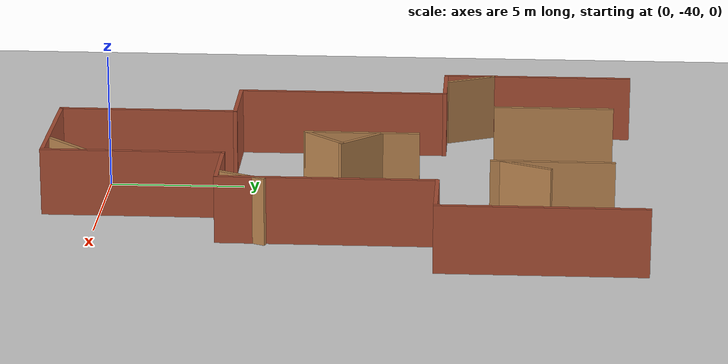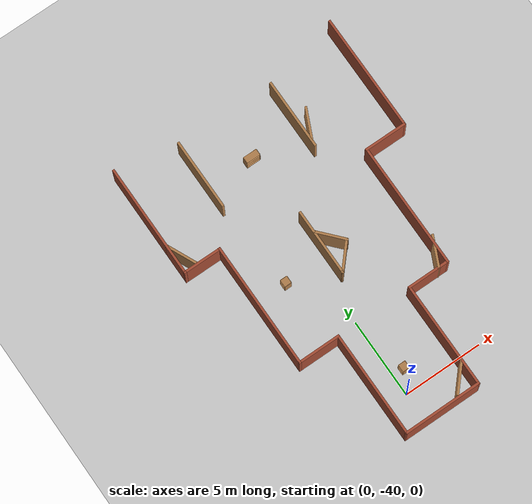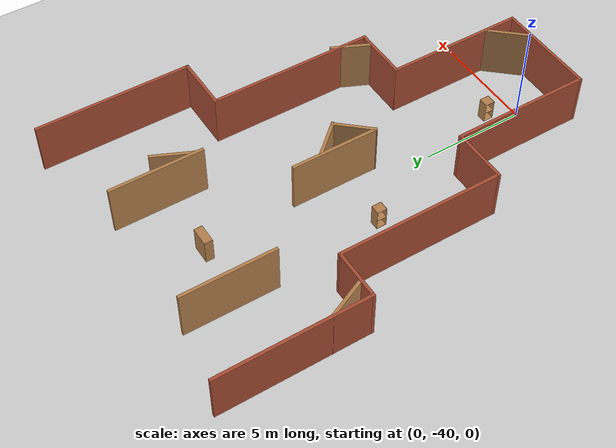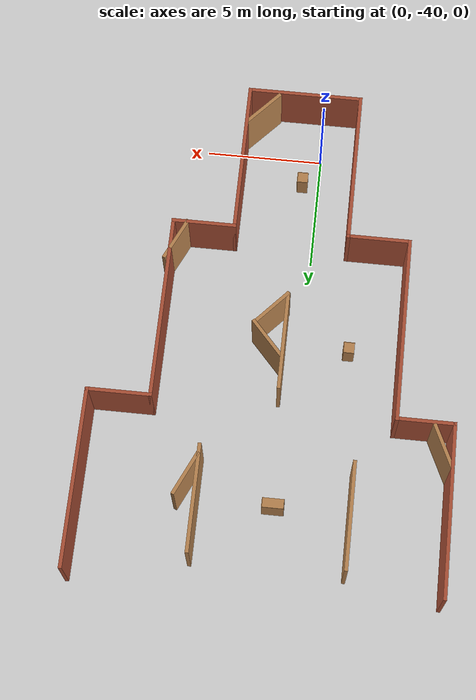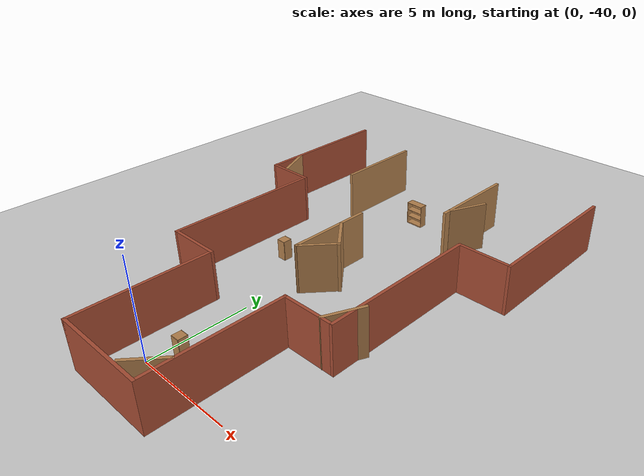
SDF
<sdf version="1.6">
 <world name="default">
  <model name="ground_plane">
   <static>1</static>
   <link name="link">
    <collision name="collision">
     <geometry><plane><normal>0 0 1</normal><size>100 100</size></plane></geometry>
     <surface><friction><ode><mu>100</mu><mu2>50</mu2></ode></friction></surface>
    </collision>
    <visual name="visual">
     <cast_shadows>0</cast_shadows>
     <geometry><plane><normal>0 0 1</normal><size>100 100</size></plane></geometry>
     <material>
      <script><uri>file://media/materials/scripts/gazebo.material</uri><name>Gazebo/Grey</name></script>
     </material>
    </visual>
   </link>
  </model>
  <model name="bookshelf_0">
   <static>1</static>
   <link name="link">
    <inertial><mass>1</mass></inertial>
    <collision name="back">
     <pose>0 0.005 0.6 0 -0 0</pose>
     <geometry><box><size>0.9 0.01 1.2</size></box></geometry>
    </collision>
    <visual name="visual1">
     <pose>0 0.005 0.6 0 -0 0</pose>
     <geometry><box><size>0.9 0.01 1.2</size></box></geometry>
     <material>
      <script><uri>file://media/materials/scripts/gazebo.material</uri><name>Gazebo/Wood</name></script>
     </material>
    </visual>
    <collision name="left_side">
     <pose>0.45 -0.195 0.6 0 -0 0</pose>
     <geometry><box><size>0.02 0.4 1.2</size></box></geometry>
    </collision>
    <visual name="visual2">
     <pose>0.45 -0.195 0.6 0 -0 0</pose>
     <geometry><box><size>0.02 0.4 1.2</size></box></geometry>
     <material>
      <script><uri>file://media/materials/scripts/gazebo.material</uri><name>Gazebo/Wood</name></script>
     </material>
    </visual>
    <collision name="right_side">
     <pose>-0.45 -0.195 0.6 0 -0 0</pose>
     <geometry><box><size>0.02 0.4 1.2</size></box></geometry>
    </collision>
    <visual name="visual3">
     <pose>-0.45 -0.195 0.6 0 -0 0</pose>
     <geometry><box><size>0.02 0.4 1.2</size></box></geometry>
     <material>
      <script><uri>file://media/materials/scripts/gazebo.material</uri><name>Gazebo/Wood</name></script>
     </material>
    </visual>
    <collision name="bottom">
     <pose>0 -0.195 0.03 0 -0 0</pose>
     <geometry><box><size>0.88 0.4 0.06</size></box></geometry>
    </collision>
    <visual name="visual4">
     <pose>0 -0.195 0.03 0 -0 0</pose>
     <geometry><box><size>0.88 0.4 0.06</size></box></geometry>
     <material>
      <script><uri>file://media/materials/scripts/gazebo.material</uri><name>Gazebo/Wood</name></script>
     </material>
    </visual>
    <collision name="top">
     <pose>0 -0.195 1.19 0 -0 0</pose>
     <geometry><box><size>0.88 0.4 0.02</size></box></geometry>
    </collision>
    <visual name="visual5">
     <pose>0 -0.195 1.19 0 -0 0</pose>
     <geometry><box><size>0.88 0.4 0.02</size></box></geometry>
     <material>
      <script><uri>file://media/materials/scripts/gazebo.material</uri><name>Gazebo/Wood</name></script>
     </material>
    </visual>
    <collision name="low_shelf">
     <pose>0 -0.195 0.43 0 -0 0</pose>
     <geometry><box><size>0.88 0.4 0.02</size></box></geometry>
    </collision>
    <visual name="visual6">
     <pose>0 -0.195 0.43 0 -0 0</pose>
     <geometry><box><size>0.88 0.4 0.02</size></box></geometry>
     <material>
      <script><uri>file://media/materials/scripts/gazebo.material</uri><name>Gazebo/Wood</name></script>
     </material>
    </visual>
    <collision name="high_shelf">
     <pose>0 -0.195 0.8 0 -0 0</pose>
     <geometry><box><size>0.88 0.4 0.02</size></box></geometry>
    </collision>
    <visual name="visual7">
     <pose>0 -0.195 0.8 0 -0 0</pose>
     <geometry><box><size>0.88 0.4 0.02</size></box></geometry>
     <material>
      <script><uri>file://media/materials/scripts/gazebo.material</uri><name>Gazebo/Wood</name></script>
     </material>
    </visual>
   </link>
   <pose>0.557156 -23.734 0 0 -0 0</pose>
  </model>
  <model name="cabinet_6">
   <static>1</static>
   <link name="cabinet_bottom_plate">
    <inertial>
     <pose>0 0 -1 0 -0 0</pose>
     <inertia><ixx>2.05</ixx><ixy>0</ixy><ixz>0</ixz><iyy>2.05</iyy><iyz>0</iyz><izz>2.05</izz></inertia>
     <mass>25</mass>
    </inertial>
    <collision name="cabinet_bottom_plate_geom">
     <pose>0 0 0.01 0 -0 0</pose>
     <geometry><box><size>0.45 0.45 0.02</size></box></geometry>
    </collision>
    <visual name="cabinet_bottom_plate_geom_visual">
     <pose>0 0 0.01 0 -0 0</pose>
     <geometry><box><size>0.45 0.45 0.02</size></box></geometry>
     <material>
      <script><uri>file://media/materials/scripts/gazebo.material</uri><name>Gazebo/Wood</name></script>
     </material>
    </visual>
    <collision name="cabinet_bottom_plate_geom_cabinet_back_plate">
     <pose>0.235 0 0.51 0 -0 0</pose>
     <geometry><box><size>0.02 0.45 1.02</size></box></geometry>
    </collision>
    <visual name="cabinet_bottom_plate_geom_cabinet_back_plate_visual">
     <pose>0.235 0 0.51 0 -0 0</pose>
     <geometry><box><size>0.02 0.45 1.02</size></box></geometry>
     <material>
      <script><uri>file://media/materials/scripts/gazebo.material</uri><name>Gazebo/Wood</name></script>
     </material>
    </visual>
    <collision name="cabinet_bottom_plate_geom_cabinet_left_plate">
     <pose>0 0.235 0.51 0 -0 0</pose>
     <geometry><box><size>0.45 0.02 1.02</size></box></geometry>
    </collision>
    <visual name="cabinet_bottom_plate_geom_cabinet_left_plate_visual">
     <pose>0 0.235 0.51 0 -0 0</pose>
     <geometry><box><size>0.45 0.02 1.02</size></box></geometry>
     <material>
      <script><uri>file://media/materials/scripts/gazebo.material</uri><name>Gazebo/Wood</name></script>
     </material>
    </visual>
    <collision name="cabinet_bottom_plate_geom_cabinet_middle_plate">
     <pose>0 0 0.51 0 -0 0</pose>
     <geometry><box><size>0.45 0.45 0.02</size></box></geometry>
    </collision>
    <visual name="cabinet_bottom_plate_geom_cabinet_middle_plate_visual">
     <pose>0 0 0.51 0 -0 0</pose>
     <geometry><box><size>0.45 0.45 0.02</size></box></geometry>
     <material>
      <script><uri>file://media/materials/scripts/gazebo.material</uri><name>Gazebo/Wood</name></script>
     </material>
    </visual>
    <collision name="cabinet_bottom_plate_geom_cabinet_right_plate">
     <pose>0 -0.235 0.51 0 -0 0</pose>
     <geometry><box><size>0.45 0.02 1.02</size></box></geometry>
    </collision>
    <visual name="cabinet_bottom_plate_geom_cabinet_right_plate_visual">
     <pose>0 -0.235 0.51 0 -0 0</pose>
     <geometry><box><size>0.45 0.02 1.02</size></box></geometry>
     <material>
      <script><uri>file://media/materials/scripts/gazebo.material</uri><name>Gazebo/Wood</name></script>
     </material>
    </visual>
    <collision name="cabinet_bottom_plate_geom_cabinet_top_plate">
     <pose>0 0 1.01 0 -0 0</pose>
     <geometry><box><size>0.45 0.45 0.02</size></box></geometry>
    </collision>
    <visual name="cabinet_bottom_plate_geom_cabinet_top_plate_visual">
     <pose>0 0 1.01 0 -0 0</pose>
     <geometry><box><size>0.45 0.45 0.02</size></box></geometry>
     <material>
      <script><uri>file://media/materials/scripts/gazebo.material</uri><name>Gazebo/Wood</name></script>
     </material>
    </visual>
   </link>
   <pose>-1.97885 -30.9848 0 0 -0 0</pose>
  </model>
  <model name="cabinet_7">
   <static>1</static>
   <link name="cabinet_bottom_plate">
    <inertial>
     <pose>0 0 -1 0 -0 0</pose>
     <inertia><ixx>2.05</ixx><ixy>0</ixy><ixz>0</ixz><iyy>2.05</iyy><iyz>0</iyz><izz>2.05</izz></inertia>
     <mass>25</mass>
    </inertial>
    <collision name="cabinet_bottom_plate_geom">
     <pose>0 0 0.01 0 -0 0</pose>
     <geometry><box><size>0.45 0.45 0.02</size></box></geometry>
    </collision>
    <visual name="cabinet_bottom_plate_geom_visual">
     <pose>0 0 0.01 0 -0 0</pose>
     <geometry><box><size>0.45 0.45 0.02</size></box></geometry>
     <material>
      <script><uri>file://media/materials/scripts/gazebo.material</uri><name>Gazebo/Wood</name></script>
     </material>
    </visual>
    <collision name="cabinet_bottom_plate_geom_cabinet_back_plate">
     <pose>0.235 0 0.51 0 -0 0</pose>
     <geometry><box><size>0.02 0.45 1.02</size></box></geometry>
    </collision>
    <visual name="cabinet_bottom_plate_geom_cabinet_back_plate_visual">
     <pose>0.235 0 0.51 0 -0 0</pose>
     <geometry><box><size>0.02 0.45 1.02</size></box></geometry>
     <material>
      <script><uri>file://media/materials/scripts/gazebo.material</uri><name>Gazebo/Wood</name></script>
     </material>
    </visual>
    <collision name="cabinet_bottom_plate_geom_cabinet_left_plate">
     <pose>0 0.235 0.51 0 -0 0</pose>
     <geometry><box><size>0.45 0.02 1.02</size></box></geometry>
    </collision>
    <visual name="cabinet_bottom_plate_geom_cabinet_left_plate_visual">
     <pose>0 0.235 0.51 0 -0 0</pose>
     <geometry><box><size>0.45 0.02 1.02</size></box></geometry>
     <material>
      <script><uri>file://media/materials/scripts/gazebo.material</uri><name>Gazebo/Wood</name></script>
     </material>
    </visual>
    <collision name="cabinet_bottom_plate_geom_cabinet_middle_plate">
     <pose>0 0 0.51 0 -0 0</pose>
     <geometry><box><size>0.45 0.45 0.02</size></box></geometry>
    </collision>
    <visual name="cabinet_bottom_plate_geom_cabinet_middle_plate_visual">
     <pose>0 0 0.51 0 -0 0</pose>
     <geometry><box><size>0.45 0.45 0.02</size></box></geometry>
     <material>
      <script><uri>file://media/materials/scripts/gazebo.material</uri><name>Gazebo/Wood</name></script>
     </material>
    </visual>
    <collision name="cabinet_bottom_plate_geom_cabinet_right_plate">
     <pose>0 -0.235 0.51 0 -0 0</pose>
     <geometry><box><size>0.45 0.02 1.02</size></box></geometry>
    </collision>
    <visual name="cabinet_bottom_plate_geom_cabinet_right_plate_visual">
     <pose>0 -0.235 0.51 0 -0 0</pose>
     <geometry><box><size>0.45 0.02 1.02</size></box></geometry>
     <material>
      <script><uri>file://media/materials/scripts/gazebo.material</uri><name>Gazebo/Wood</name></script>
     </material>
    </visual>
    <collision name="cabinet_bottom_plate_geom_cabinet_top_plate">
     <pose>0 0 1.01 0 -0 0</pose>
     <geometry><box><size>0.45 0.45 0.02</size></box></geometry>
    </collision>
    <visual name="cabinet_bottom_plate_geom_cabinet_top_plate_visual">
     <pose>0 0 1.01 0 -0 0</pose>
     <geometry><box><size>0.45 0.45 0.02</size></box></geometry>
     <material>
      <script><uri>file://media/materials/scripts/gazebo.material</uri><name>Gazebo/Wood</name></script>
     </material>
    </visual>
   </link>
   <pose>0.687999 -38.7395 0 0 -0 0</pose>
  </model>
  <model name="test_maze">
   <link name="Wall_102">
    <pose>-0.206581 -30.7485 0 0 0 -1.5708</pose>
    <visual name="Wall_102_Visual">
     <pose>0 0 1.25 0 -0 0</pose>
     <geometry><box><size>4.25 0.15 2.5</size></box></geometry>
     <material>
      <script><uri>file://media/materials/scripts/gazebo.material</uri><name>Gazebo/Wood</name></script>
      <ambient>1 1 1 1</ambient>
      <shader type="pixel"/>
     </material>
     <meta><layer>0</layer></meta>
    </visual>
    <collision name="Wall_102_Collision">
     <pose>0 0 1.25 0 -0 0</pose>
     <geometry><box><size>4.25 0.15 2.5</size></box></geometry>
     <surface>
      <friction>
       <ode><mu>1</mu><mu2>1</mu2><fdir1>0 0 0</fdir1><slip1>0</slip1><slip2>0</slip2></ode>
       <torsional>
        <coefficient>1</coefficient>
        <patch_radius>0</patch_radius>
        <surface_radius>0</surface_radius>
        <use_patch_radius>1</use_patch_radius>
        <ode><slip>0</slip></ode>
       </torsional>
      </friction>
      <bounce><restitution_coefficient>0</restitution_coefficient><threshold>1e+06</threshold></bounce>
      <contact>
       <collide_without_contact>0</collide_without_contact>
       <collide_without_contact_bitmask>1</collide_without_contact_bitmask>
       <collide_bitmask>1</collide_bitmask>
       <ode>
        <soft_cfm>0</soft_cfm>
        <soft_erp>0.2</soft_erp>
        <kp>1e+13</kp>
        <kd>1</kd>
        <max_vel>0.01</max_vel>
        <min_depth>0</min_depth>
       </ode>
       <bullet>
        <split_impulse>1</split_impulse>
        <split_impulse_penetration_threshold>-0.01</split_impulse_penetration_threshold>
        <soft_cfm>0</soft_cfm>
        <soft_erp>0.2</soft_erp>
        <kp>1e+13</kp>
        <kd>1</kd>
       </bullet>
      </contact>
     </surface>
    </collision>
   </link>
   <link name="Wall_104">
    <pose>-3.54557 -23.662 0 0 0 -1.5708</pose>
    <visual name="Wall_104_Visual">
     <pose>0 0 1.25 0 -0 0</pose>
     <geometry><box><size>4.5 0.15 2.5</size></box></geometry>
     <material>
      <script><uri>file://media/materials/scripts/gazebo.material</uri><name>Gazebo/Wood</name></script>
      <ambient>1 1 1 1</ambient>
      <shader type="pixel"/>
     </material>
     <meta><layer>0</layer></meta>
    </visual>
    <collision name="Wall_104_Collision">
     <pose>0 0 1.25 0 -0 0</pose>
     <geometry><box><size>4.5 0.15 2.5</size></box></geometry>
     <surface>
      <friction>
       <ode><mu>1</mu><mu2>1</mu2><fdir1>0 0 0</fdir1><slip1>0</slip1><slip2>0</slip2></ode>
       <torsional>
        <coefficient>1</coefficient>
        <patch_radius>0</patch_radius>
        <surface_radius>0</surface_radius>
        <use_patch_radius>1</use_patch_radius>
        <ode><slip>0</slip></ode>
       </torsional>
      </friction>
      <bounce><restitution_coefficient>0</restitution_coefficient><threshold>1e+06</threshold></bounce>
      <contact>
       <collide_without_contact>0</collide_without_contact>
       <collide_without_contact_bitmask>1</collide_without_contact_bitmask>
       <collide_bitmask>1</collide_bitmask>
       <ode>
        <soft_cfm>0</soft_cfm>
        <soft_erp>0.2</soft_erp>
        <kp>1e+13</kp>
        <kd>1</kd>
        <max_vel>0.01</max_vel>
        <min_depth>0</min_depth>
       </ode>
       <bullet>
        <split_impulse>1</split_impulse>
        <split_impulse_penetration_threshold>-0.01</split_impulse_penetration_threshold>
        <soft_cfm>0</soft_cfm>
        <soft_erp>0.2</soft_erp>
        <kp>1e+13</kp>
        <kd>1</kd>
       </bullet>
      </contact>
     </surface>
    </collision>
   </link>
   <link name="Wall_109">
    <pose>2.71541 -23.7497 0 0 -0 1.5708</pose>
    <visual name="Wall_109_Visual">
     <pose>0 0 1.25 0 -0 0</pose>
     <geometry><box><size>4.5 0.15 2.5</size></box></geometry>
     <material>
      <script><uri>file://media/materials/scripts/gazebo.material</uri><name>Gazebo/Wood</name></script>
      <ambient>1 1 1 1</ambient>
      <shader type="pixel"/>
     </material>
     <meta><layer>0</layer></meta>
    </visual>
    <collision name="Wall_109_Collision">
     <pose>0 0 1.25 0 -0 0</pose>
     <geometry><box><size>4.5 0.15 2.5</size></box></geometry>
     <surface>
      <friction>
       <ode><mu>1</mu><mu2>1</mu2><fdir1>0 0 0</fdir1><slip1>0</slip1><slip2>0</slip2></ode>
       <torsional>
        <coefficient>1</coefficient>
        <patch_radius>0</patch_radius>
        <surface_radius>0</surface_radius>
        <use_patch_radius>1</use_patch_radius>
        <ode><slip>0</slip></ode>
       </torsional>
      </friction>
      <bounce><restitution_coefficient>0</restitution_coefficient><threshold>1e+06</threshold></bounce>
      <contact>
       <collide_without_contact>0</collide_without_contact>
       <collide_without_contact_bitmask>1</collide_without_contact_bitmask>
       <collide_bitmask>1</collide_bitmask>
       <ode>
        <soft_cfm>0</soft_cfm>
        <soft_erp>0.2</soft_erp>
        <kp>1e+13</kp>
        <kd>1</kd>
        <max_vel>0.01</max_vel>
        <min_depth>0</min_depth>
       </ode>
       <bullet>
        <split_impulse>1</split_impulse>
        <split_impulse_penetration_threshold>-0.01</split_impulse_penetration_threshold>
        <soft_cfm>0</soft_cfm>
        <soft_erp>0.2</soft_erp>
        <kp>1e+13</kp>
        <kd>1</kd>
       </bullet>
      </contact>
     </surface>
    </collision>
   </link>
   <link name="Wall_34">
    <pose>-0.068945 -42.275 0 0 -0 0</pose>
    <visual name="Wall_34_Visual">
     <pose>0 0 1.25 0 -0 0</pose>
     <geometry><box><size>5 0.15 2.5</size></box></geometry>
     <material>
      <script><uri>file://media/materials/scripts/gazebo.material</uri><name>Gazebo/Bricks</name></script>
      <ambient>1 1 1 1</ambient>
      <shader type="pixel"/>
     </material>
     <meta><layer>0</layer></meta>
    </visual>
    <collision name="Wall_34_Collision">
     <pose>0 0 1.25 0 -0 0</pose>
     <geometry><box><size>5 0.15 2.5</size></box></geometry>
     <surface>
      <friction>
       <ode><mu>1</mu><mu2>1</mu2><fdir1>0 0 0</fdir1><slip1>0</slip1><slip2>0</slip2></ode>
       <torsional>
        <coefficient>1</coefficient>
        <patch_radius>0</patch_radius>
        <surface_radius>0</surface_radius>
        <use_patch_radius>1</use_patch_radius>
        <ode><slip>0</slip></ode>
       </torsional>
      </friction>
      <bounce><restitution_coefficient>0</restitution_coefficient><threshold>1e+06</threshold></bounce>
      <contact>
       <collide_without_contact>0</collide_without_contact>
       <collide_without_contact_bitmask>1</collide_without_contact_bitmask>
       <collide_bitmask>1</collide_bitmask>
       <ode>
        <soft_cfm>0</soft_cfm>
        <soft_erp>0.2</soft_erp>
        <kp>1e+13</kp>
        <kd>1</kd>
        <max_vel>0.01</max_vel>
        <min_depth>0</min_depth>
       </ode>
       <bullet>
        <split_impulse>1</split_impulse>
        <split_impulse_penetration_threshold>-0.01</split_impulse_penetration_threshold>
        <soft_cfm>0</soft_cfm>
        <soft_erp>0.2</soft_erp>
        <kp>1e+13</kp>
        <kd>1</kd>
       </bullet>
      </contact>
     </surface>
    </collision>
   </link>
   <link name="Wall_35">
    <pose>2.35606 -38.975 0 0 -0 1.5708</pose>
    <visual name="Wall_35_Visual">
     <pose>0 0 1.25 0 -0 0</pose>
     <geometry><box><size>6.75 0.15 2.5</size></box></geometry>
     <material>
      <script><uri>file://media/materials/scripts/gazebo.material</uri><name>Gazebo/Bricks</name></script>
      <ambient>1 1 1 1</ambient>
      <shader type="pixel"/>
     </material>
     <meta><layer>0</layer></meta>
    </visual>
    <collision name="Wall_35_Collision">
     <pose>0 0 1.25 0 -0 0</pose>
     <geometry><box><size>6.75 0.15 2.5</size></box></geometry>
     <surface>
      <friction>
       <ode><mu>1</mu><mu2>1</mu2><fdir1>0 0 0</fdir1><slip1>0</slip1><slip2>0</slip2></ode>
       <torsional>
        <coefficient>1</coefficient>
        <patch_radius>0</patch_radius>
        <surface_radius>0</surface_radius>
        <use_patch_radius>1</use_patch_radius>
        <ode><slip>0</slip></ode>
       </torsional>
      </friction>
      <bounce><restitution_coefficient>0</restitution_coefficient><threshold>1e+06</threshold></bounce>
      <contact>
       <collide_without_contact>0</collide_without_contact>
       <collide_without_contact_bitmask>1</collide_without_contact_bitmask>
       <collide_bitmask>1</collide_bitmask>
       <ode>
        <soft_cfm>0</soft_cfm>
        <soft_erp>0.2</soft_erp>
        <kp>1e+13</kp>
        <kd>1</kd>
        <max_vel>0.01</max_vel>
        <min_depth>0</min_depth>
       </ode>
       <bullet>
        <split_impulse>1</split_impulse>
        <split_impulse_penetration_threshold>-0.01</split_impulse_penetration_threshold>
        <soft_cfm>0</soft_cfm>
        <soft_erp>0.2</soft_erp>
        <kp>1e+13</kp>
        <kd>1</kd>
       </bullet>
      </contact>
     </surface>
    </collision>
   </link>
   <link name="Wall_36">
    <pose>3.65605 -35.675 0 0 -0 0</pose>
    <visual name="Wall_36_Visual">
     <pose>0 0 1.25 0 -0 0</pose>
     <geometry><box><size>2.75 0.15 2.5</size></box></geometry>
     <material>
      <script><uri>file://media/materials/scripts/gazebo.material</uri><name>Gazebo/Bricks</name></script>
      <ambient>1 1 1 1</ambient>
      <shader type="pixel"/>
     </material>
     <meta><layer>0</layer></meta>
    </visual>
    <collision name="Wall_36_Collision">
     <pose>0 0 1.25 0 -0 0</pose>
     <geometry><box><size>2.75 0.15 2.5</size></box></geometry>
     <surface>
      <friction>
       <ode><mu>1</mu><mu2>1</mu2><fdir1>0 0 0</fdir1><slip1>0</slip1><slip2>0</slip2></ode>
       <torsional>
        <coefficient>1</coefficient>
        <patch_radius>0</patch_radius>
        <surface_radius>0</surface_radius>
        <use_patch_radius>1</use_patch_radius>
        <ode><slip>0</slip></ode>
       </torsional>
      </friction>
      <bounce><restitution_coefficient>0</restitution_coefficient><threshold>1e+06</threshold></bounce>
      <contact>
       <collide_without_contact>0</collide_without_contact>
       <collide_without_contact_bitmask>1</collide_without_contact_bitmask>
       <collide_bitmask>1</collide_bitmask>
       <ode>
        <soft_cfm>0</soft_cfm>
        <soft_erp>0.2</soft_erp>
        <kp>1e+13</kp>
        <kd>1</kd>
        <max_vel>0.01</max_vel>
        <min_depth>0</min_depth>
       </ode>
       <bullet>
        <split_impulse>1</split_impulse>
        <split_impulse_penetration_threshold>-0.01</split_impulse_penetration_threshold>
        <soft_cfm>0</soft_cfm>
        <soft_erp>0.2</soft_erp>
        <kp>1e+13</kp>
        <kd>1</kd>
       </bullet>
      </contact>
     </surface>
    </collision>
   </link>
   <link name="Wall_37">
    <pose>4.95606 -31.75 0 0 -0 1.5708</pose>
    <visual name="Wall_37_Visual">
     <pose>0 0 1.25 0 -0 0</pose>
     <geometry><box><size>8 0.15 2.5</size></box></geometry>
     <material>
      <script><uri>file://media/materials/scripts/gazebo.material</uri><name>Gazebo/Bricks</name></script>
      <ambient>1 1 1 1</ambient>
      <shader type="pixel"/>
     </material>
     <meta><layer>0</layer></meta>
    </visual>
    <collision name="Wall_37_Collision">
     <pose>0 0 1.25 0 -0 0</pose>
     <geometry><box><size>8 0.15 2.5</size></box></geometry>
     <surface>
      <friction>
       <ode><mu>1</mu><mu2>1</mu2><fdir1>0 0 0</fdir1><slip1>0</slip1><slip2>0</slip2></ode>
       <torsional>
        <coefficient>1</coefficient>
        <patch_radius>0</patch_radius>
        <surface_radius>0</surface_radius>
        <use_patch_radius>1</use_patch_radius>
        <ode><slip>0</slip></ode>
       </torsional>
      </friction>
      <bounce><restitution_coefficient>0</restitution_coefficient><threshold>1e+06</threshold></bounce>
      <contact>
       <collide_without_contact>0</collide_without_contact>
       <collide_without_contact_bitmask>1</collide_without_contact_bitmask>
       <collide_bitmask>1</collide_bitmask>
       <ode>
        <soft_cfm>0</soft_cfm>
        <soft_erp>0.2</soft_erp>
        <kp>1e+13</kp>
        <kd>1</kd>
        <max_vel>0.01</max_vel>
        <min_depth>0</min_depth>
       </ode>
       <bullet>
        <split_impulse>1</split_impulse>
        <split_impulse_penetration_threshold>-0.01</split_impulse_penetration_threshold>
        <soft_cfm>0</soft_cfm>
        <soft_erp>0.2</soft_erp>
        <kp>1e+13</kp>
        <kd>1</kd>
       </bullet>
      </contact>
     </surface>
    </collision>
   </link>
   <link name="Wall_38">
    <pose>6.25605 -27.825 0 0 -0 0</pose>
    <visual name="Wall_38_Visual">
     <pose>0 0 1.25 0 -0 0</pose>
     <geometry><box><size>2.75 0.15 2.5</size></box></geometry>
     <material>
      <script><uri>file://media/materials/scripts/gazebo.material</uri><name>Gazebo/Bricks</name></script>
      <ambient>1 1 1 1</ambient>
      <shader type="pixel"/>
     </material>
     <meta><layer>0</layer></meta>
    </visual>
    <collision name="Wall_38_Collision">
     <pose>0 0 1.25 0 -0 0</pose>
     <geometry><box><size>2.75 0.15 2.5</size></box></geometry>
     <surface>
      <friction>
       <ode><mu>1</mu><mu2>1</mu2><fdir1>0 0 0</fdir1><slip1>0</slip1><slip2>0</slip2></ode>
       <torsional>
        <coefficient>1</coefficient>
        <patch_radius>0</patch_radius>
        <surface_radius>0</surface_radius>
        <use_patch_radius>1</use_patch_radius>
        <ode><slip>0</slip></ode>
       </torsional>
      </friction>
      <bounce><restitution_coefficient>0</restitution_coefficient><threshold>1e+06</threshold></bounce>
      <contact>
       <collide_without_contact>0</collide_without_contact>
       <collide_without_contact_bitmask>1</collide_without_contact_bitmask>
       <collide_bitmask>1</collide_bitmask>
       <ode>
        <soft_cfm>0</soft_cfm>
        <soft_erp>0.2</soft_erp>
        <kp>1e+13</kp>
        <kd>1</kd>
        <max_vel>0.01</max_vel>
        <min_depth>0</min_depth>
       </ode>
       <bullet>
        <split_impulse>1</split_impulse>
        <split_impulse_penetration_threshold>-0.01</split_impulse_penetration_threshold>
        <soft_cfm>0</soft_cfm>
        <soft_erp>0.2</soft_erp>
        <kp>1e+13</kp>
        <kd>1</kd>
       </bullet>
      </contact>
     </surface>
    </collision>
   </link>
   <link name="Wall_39">
    <pose>7.55605 -24.15 0 0 -0 1.5708</pose>
    <visual name="Wall_39_Visual">
     <pose>0 0 1.25 0 -0 0</pose>
     <geometry><box><size>7.5 0.15 2.5</size></box></geometry>
     <material>
      <script><uri>file://media/materials/scripts/gazebo.material</uri><name>Gazebo/Bricks</name></script>
      <ambient>1 1 1 1</ambient>
      <shader type="pixel"/>
     </material>
     <meta><layer>0</layer></meta>
    </visual>
    <collision name="Wall_39_Collision">
     <pose>0 0 1.25 0 -0 0</pose>
     <geometry><box><size>7.5 0.15 2.5</size></box></geometry>
     <surface>
      <friction>
       <ode><mu>1</mu><mu2>1</mu2><fdir1>0 0 0</fdir1><slip1>0</slip1><slip2>0</slip2></ode>
       <torsional>
        <coefficient>1</coefficient>
        <patch_radius>0</patch_radius>
        <surface_radius>0</surface_radius>
        <use_patch_radius>1</use_patch_radius>
        <ode><slip>0</slip></ode>
       </torsional>
      </friction>
      <bounce><restitution_coefficient>0</restitution_coefficient><threshold>1e+06</threshold></bounce>
      <contact>
       <collide_without_contact>0</collide_without_contact>
       <collide_without_contact_bitmask>1</collide_without_contact_bitmask>
       <collide_bitmask>1</collide_bitmask>
       <ode>
        <soft_cfm>0</soft_cfm>
        <soft_erp>0.2</soft_erp>
        <kp>1e+13</kp>
        <kd>1</kd>
        <max_vel>0.01</max_vel>
        <min_depth>0</min_depth>
       </ode>
       <bullet>
        <split_impulse>1</split_impulse>
        <split_impulse_penetration_threshold>-0.01</split_impulse_penetration_threshold>
        <soft_cfm>0</soft_cfm>
        <soft_erp>0.2</soft_erp>
        <kp>1e+13</kp>
        <kd>1</kd>
       </bullet>
      </contact>
     </surface>
    </collision>
   </link>
   <link name="Wall_45">
    <pose>-2.49395 -38.975 0 0 -0 1.5708</pose>
    <visual name="Wall_45_Visual">
     <pose>0 0 1.25 0 -0 0</pose>
     <geometry><box><size>6.75 0.15 2.5</size></box></geometry>
     <material>
      <script><uri>file://media/materials/scripts/gazebo.material</uri><name>Gazebo/Bricks</name></script>
      <ambient>1 1 1 1</ambient>
      <shader type="pixel"/>
     </material>
     <meta><layer>0</layer></meta>
    </visual>
    <collision name="Wall_45_Collision">
     <pose>0 0 1.25 0 -0 0</pose>
     <geometry><box><size>6.75 0.15 2.5</size></box></geometry>
     <surface>
      <friction>
       <ode><mu>1</mu><mu2>1</mu2><fdir1>0 0 0</fdir1><slip1>0</slip1><slip2>0</slip2></ode>
       <torsional>
        <coefficient>1</coefficient>
        <patch_radius>0</patch_radius>
        <surface_radius>0</surface_radius>
        <use_patch_radius>1</use_patch_radius>
        <ode><slip>0</slip></ode>
       </torsional>
      </friction>
      <bounce><restitution_coefficient>0</restitution_coefficient><threshold>1e+06</threshold></bounce>
      <contact>
       <collide_without_contact>0</collide_without_contact>
       <collide_without_contact_bitmask>1</collide_without_contact_bitmask>
       <collide_bitmask>1</collide_bitmask>
       <ode>
        <soft_cfm>0</soft_cfm>
        <soft_erp>0.2</soft_erp>
        <kp>1e+13</kp>
        <kd>1</kd>
        <max_vel>0.01</max_vel>
        <min_depth>0</min_depth>
       </ode>
       <bullet>
        <split_impulse>1</split_impulse>
        <split_impulse_penetration_threshold>-0.01</split_impulse_penetration_threshold>
        <soft_cfm>0</soft_cfm>
        <soft_erp>0.2</soft_erp>
        <kp>1e+13</kp>
        <kd>1</kd>
       </bullet>
      </contact>
     </surface>
    </collision>
   </link>
   <link name="Wall_46">
    <pose>-3.79394 -35.675 0 0 -0 3.14159</pose>
    <visual name="Wall_46_Visual">
     <pose>0 0 1.25 0 -0 0</pose>
     <geometry><box><size>2.75 0.15 2.5</size></box></geometry>
     <material>
      <script><uri>file://media/materials/scripts/gazebo.material</uri><name>Gazebo/Bricks</name></script>
      <ambient>1 1 1 1</ambient>
      <shader type="pixel"/>
     </material>
     <meta><layer>0</layer></meta>
    </visual>
    <collision name="Wall_46_Collision">
     <pose>0 0 1.25 0 -0 0</pose>
     <geometry><box><size>2.75 0.15 2.5</size></box></geometry>
     <surface>
      <friction>
       <ode><mu>1</mu><mu2>1</mu2><fdir1>0 0 0</fdir1><slip1>0</slip1><slip2>0</slip2></ode>
       <torsional>
        <coefficient>1</coefficient>
        <patch_radius>0</patch_radius>
        <surface_radius>0</surface_radius>
        <use_patch_radius>1</use_patch_radius>
        <ode><slip>0</slip></ode>
       </torsional>
      </friction>
      <bounce><restitution_coefficient>0</restitution_coefficient><threshold>1e+06</threshold></bounce>
      <contact>
       <collide_without_contact>0</collide_without_contact>
       <collide_without_contact_bitmask>1</collide_without_contact_bitmask>
       <collide_bitmask>1</collide_bitmask>
       <ode>
        <soft_cfm>0</soft_cfm>
        <soft_erp>0.2</soft_erp>
        <kp>1e+13</kp>
        <kd>1</kd>
        <max_vel>0.01</max_vel>
        <min_depth>0</min_depth>
       </ode>
       <bullet>
        <split_impulse>1</split_impulse>
        <split_impulse_penetration_threshold>-0.01</split_impulse_penetration_threshold>
        <soft_cfm>0</soft_cfm>
        <soft_erp>0.2</soft_erp>
        <kp>1e+13</kp>
        <kd>1</kd>
       </bullet>
      </contact>
     </surface>
    </collision>
   </link>
   <link name="Wall_47">
    <pose>-5.09395 -31.75 0 0 -0 1.5708</pose>
    <visual name="Wall_47_Visual">
     <pose>0 0 1.25 0 -0 0</pose>
     <geometry><box><size>8 0.15 2.5</size></box></geometry>
     <material>
      <script><uri>file://media/materials/scripts/gazebo.material</uri><name>Gazebo/Bricks</name></script>
      <ambient>1 1 1 1</ambient>
      <shader type="pixel"/>
     </material>
     <meta><layer>0</layer></meta>
    </visual>
    <collision name="Wall_47_Collision">
     <pose>0 0 1.25 0 -0 0</pose>
     <geometry><box><size>8 0.15 2.5</size></box></geometry>
     <surface>
      <friction>
       <ode><mu>1</mu><mu2>1</mu2><fdir1>0 0 0</fdir1><slip1>0</slip1><slip2>0</slip2></ode>
       <torsional>
        <coefficient>1</coefficient>
        <patch_radius>0</patch_radius>
        <surface_radius>0</surface_radius>
        <use_patch_radius>1</use_patch_radius>
        <ode><slip>0</slip></ode>
       </torsional>
      </friction>
      <bounce><restitution_coefficient>0</restitution_coefficient><threshold>1e+06</threshold></bounce>
      <contact>
       <collide_without_contact>0</collide_without_contact>
       <collide_without_contact_bitmask>1</collide_without_contact_bitmask>
       <collide_bitmask>1</collide_bitmask>
       <ode>
        <soft_cfm>0</soft_cfm>
        <soft_erp>0.2</soft_erp>
        <kp>1e+13</kp>
        <kd>1</kd>
        <max_vel>0.01</max_vel>
        <min_depth>0</min_depth>
       </ode>
       <bullet>
        <split_impulse>1</split_impulse>
        <split_impulse_penetration_threshold>-0.01</split_impulse_penetration_threshold>
        <soft_cfm>0</soft_cfm>
        <soft_erp>0.2</soft_erp>
        <kp>1e+13</kp>
        <kd>1</kd>
       </bullet>
      </contact>
     </surface>
    </collision>
   </link>
   <link name="Wall_48">
    <pose>-6.26895 -27.825 0 0 -0 3.14159</pose>
    <visual name="Wall_48_Visual">
     <pose>0 0 1.25 0 -0 0</pose>
     <geometry><box><size>2.5 0.15 2.5</size></box></geometry>
     <material>
      <script><uri>file://media/materials/scripts/gazebo.material</uri><name>Gazebo/Bricks</name></script>
      <ambient>1 1 1 1</ambient>
      <shader type="pixel"/>
     </material>
     <meta><layer>0</layer></meta>
    </visual>
    <collision name="Wall_48_Collision">
     <pose>0 0 1.25 0 -0 0</pose>
     <geometry><box><size>2.5 0.15 2.5</size></box></geometry>
     <surface>
      <friction>
       <ode><mu>1</mu><mu2>1</mu2><fdir1>0 0 0</fdir1><slip1>0</slip1><slip2>0</slip2></ode>
       <torsional>
        <coefficient>1</coefficient>
        <patch_radius>0</patch_radius>
        <surface_radius>0</surface_radius>
        <use_patch_radius>1</use_patch_radius>
        <ode><slip>0</slip></ode>
       </torsional>
      </friction>
      <bounce><restitution_coefficient>0</restitution_coefficient><threshold>1e+06</threshold></bounce>
      <contact>
       <collide_without_contact>0</collide_without_contact>
       <collide_without_contact_bitmask>1</collide_without_contact_bitmask>
       <collide_bitmask>1</collide_bitmask>
       <ode>
        <soft_cfm>0</soft_cfm>
        <soft_erp>0.2</soft_erp>
        <kp>1e+13</kp>
        <kd>1</kd>
        <max_vel>0.01</max_vel>
        <min_depth>0</min_depth>
       </ode>
       <bullet>
        <split_impulse>1</split_impulse>
        <split_impulse_penetration_threshold>-0.01</split_impulse_penetration_threshold>
        <soft_cfm>0</soft_cfm>
        <soft_erp>0.2</soft_erp>
        <kp>1e+13</kp>
        <kd>1</kd>
       </bullet>
      </contact>
     </surface>
    </collision>
   </link>
   <link name="Wall_49">
    <pose>-7.44395 -24.275 0 0 -0 1.5708</pose>
    <visual name="Wall_49_Visual">
     <pose>0 0 1.25 0 -0 0</pose>
     <geometry><box><size>7.25 0.15 2.5</size></box></geometry>
     <material>
      <script><uri>file://media/materials/scripts/gazebo.material</uri><name>Gazebo/Bricks</name></script>
      <ambient>1 1 1 1</ambient>
      <shader type="pixel"/>
     </material>
     <meta><layer>0</layer></meta>
    </visual>
    <collision name="Wall_49_Collision">
     <pose>0 0 1.25 0 -0 0</pose>
     <geometry><box><size>7.25 0.15 2.5</size></box></geometry>
     <surface>
      <friction>
       <ode><mu>1</mu><mu2>1</mu2><fdir1>0 0 0</fdir1><slip1>0</slip1><slip2>0</slip2></ode>
       <torsional>
        <coefficient>1</coefficient>
        <patch_radius>0</patch_radius>
        <surface_radius>0</surface_radius>
        <use_patch_radius>1</use_patch_radius>
        <ode><slip>0</slip></ode>
       </torsional>
      </friction>
      <bounce><restitution_coefficient>0</restitution_coefficient><threshold>1e+06</threshold></bounce>
      <contact>
       <collide_without_contact>0</collide_without_contact>
       <collide_without_contact_bitmask>1</collide_without_contact_bitmask>
       <collide_bitmask>1</collide_bitmask>
       <ode>
        <soft_cfm>0</soft_cfm>
        <soft_erp>0.2</soft_erp>
        <kp>1e+13</kp>
        <kd>1</kd>
        <max_vel>0.01</max_vel>
        <min_depth>0</min_depth>
       </ode>
       <bullet>
        <split_impulse>1</split_impulse>
        <split_impulse_penetration_threshold>-0.01</split_impulse_penetration_threshold>
        <soft_cfm>0</soft_cfm>
        <soft_erp>0.2</soft_erp>
        <kp>1e+13</kp>
        <kd>1</kd>
       </bullet>
      </contact>
     </surface>
    </collision>
   </link>
   <link name="Wall_96_clone_0_clone_clone_clone_clone_0">
    <pose>3.14666 -24.7081 0 0 0 -2</pose>
    <inertial>
     <mass>1</mass>
     <inertia><ixx>1</ixx><ixy>0</ixy><ixz>0</ixz><iyy>1</iyy><iyz>0</iyz><izz>1</izz></inertia>
    </inertial>
    <visual name="Wall_96_Visual">
     <pose>0 0 1.25 0 -0 0</pose>
     <geometry><box><size>2.0055 0.15 2.5</size></box></geometry>
     <material>
      <script><uri>file://media/materials/scripts/gazebo.material</uri><name>Gazebo/Wood</name></script>
      <ambient>1 1 1 1</ambient>
      <shader type="pixel"><normal_map>__default__</normal_map></shader>
      <diffuse>1 1 1 1</diffuse>
      <specular>0.2 0.2 0.2 1</specular>
      <emissive>0 0 0 1</emissive>
     </material>
     <meta><layer>0</layer></meta>
    </visual>
    <collision name="Wall_96_Collision">
     <pose>0 0 1.25 0 -0 0</pose>
     <geometry><box><size>2.0055 0.15 2.5</size></box></geometry>
     <surface>
      <friction>
       <ode><mu>1</mu><mu2>1</mu2><fdir1>0 0 0</fdir1><slip1>0</slip1><slip2>0</slip2></ode>
       <torsional>
        <coefficient>1</coefficient>
        <patch_radius>0</patch_radius>
        <surface_radius>0</surface_radius>
        <use_patch_radius>1</use_patch_radius>
        <ode><slip>0</slip></ode>
       </torsional>
      </friction>
      <bounce><restitution_coefficient>0</restitution_coefficient><threshold>1e+06</threshold></bounce>
      <contact>
       <collide_without_contact>0</collide_without_contact>
       <collide_without_contact_bitmask>1</collide_without_contact_bitmask>
       <collide_bitmask>1</collide_bitmask>
       <ode>
        <soft_cfm>0</soft_cfm>
        <soft_erp>0.2</soft_erp>
        <kp>1e+13</kp>
        <kd>1</kd>
        <max_vel>0.01</max_vel>
        <min_depth>0</min_depth>
       </ode>
       <bullet>
        <split_impulse>1</split_impulse>
        <split_impulse_penetration_threshold>-0.01</split_impulse_penetration_threshold>
        <soft_cfm>0</soft_cfm>
        <soft_erp>0.2</soft_erp>
        <kp>1e+13</kp>
        <kd>1</kd>
       </bullet>
      </contact>
     </surface>
    </collision>
   </link>
   <link name="Wall_96_clone_0_clone_clone_clone_clone_0_clone_0">
    <pose>4.74364 -34.8323 0 0 0 -2</pose>
    <inertial>
     <mass>1</mass>
     <inertia><ixx>1</ixx><ixy>0</ixy><ixz>0</ixz><iyy>1</iyy><iyz>0</iyz><izz>1</izz></inertia>
    </inertial>
    <visual name="Wall_96_Visual">
     <pose>0 0 1.25 0 -0 0</pose>
     <geometry><box><size>2.0055 0.15 2.5</size></box></geometry>
     <material>
      <script><uri>file://media/materials/scripts/gazebo.material</uri><name>Gazebo/Wood</name></script>
      <ambient>1 1 1 1</ambient>
      <shader type="pixel"><normal_map>__default__</normal_map></shader>
      <diffuse>1 1 1 1</diffuse>
      <specular>0.2 0.2 0.2 1</specular>
      <emissive>0 0 0 1</emissive>
     </material>
     <meta><layer>0</layer></meta>
    </visual>
    <collision name="Wall_96_Collision">
     <pose>0 0 1.25 0 -0 0</pose>
     <geometry><box><size>2.0055 0.15 2.5</size></box></geometry>
     <surface>
      <friction>
       <ode><mu>1</mu><mu2>1</mu2><fdir1>0 0 0</fdir1><slip1>0</slip1><slip2>0</slip2></ode>
       <torsional>
        <coefficient>1</coefficient>
        <patch_radius>0</patch_radius>
        <surface_radius>0</surface_radius>
        <use_patch_radius>1</use_patch_radius>
        <ode><slip>0</slip></ode>
       </torsional>
      </friction>
      <bounce><restitution_coefficient>0</restitution_coefficient><threshold>1e+06</threshold></bounce>
      <contact>
       <collide_without_contact>0</collide_without_contact>
       <collide_without_contact_bitmask>1</collide_without_contact_bitmask>
       <collide_bitmask>1</collide_bitmask>
       <ode>
        <soft_cfm>0</soft_cfm>
        <soft_erp>0.2</soft_erp>
        <kp>1e+13</kp>
        <kd>1</kd>
        <max_vel>0.01</max_vel>
        <min_depth>0</min_depth>
       </ode>
       <bullet>
        <split_impulse>1</split_impulse>
        <split_impulse_penetration_threshold>-0.01</split_impulse_penetration_threshold>
        <soft_cfm>0</soft_cfm>
        <soft_erp>0.2</soft_erp>
        <kp>1e+13</kp>
        <kd>1</kd>
       </bullet>
      </contact>
     </surface>
    </collision>
   </link>
   <link name="Wall_96_clone_0_clone_clone_clone_clone_clone_clone_0">
    <pose>-7.04059 -26.8376 0 0 -0 2</pose>
    <inertial>
     <mass>1</mass>
     <inertia><ixx>1</ixx><ixy>0</ixy><ixz>0</ixz><iyy>1</iyy><iyz>0</iyz><izz>1</izz></inertia>
    </inertial>
    <visual name="Wall_96_Visual">
     <pose>0 0 1.25 0 -0 0</pose>
     <geometry><box><size>2.0055 0.15 2.5</size></box></geometry>
     <material>
      <script><uri>file://media/materials/scripts/gazebo.material</uri><name>Gazebo/Wood</name></script>
      <ambient>1 1 1 1</ambient>
      <shader type="pixel"><normal_map>__default__</normal_map></shader>
      <diffuse>1 1 1 1</diffuse>
      <specular>0.2 0.2 0.2 1</specular>
      <emissive>0 0 0 1</emissive>
     </material>
     <meta><layer>0</layer></meta>
    </visual>
    <collision name="Wall_96_Collision">
     <pose>0 0 1.25 0 -0 0</pose>
     <geometry><box><size>2.0055 0.15 2.5</size></box></geometry>
     <surface>
      <friction>
       <ode><mu>1</mu><mu2>1</mu2><fdir1>0 0 0</fdir1><slip1>0</slip1><slip2>0</slip2></ode>
       <torsional>
        <coefficient>1</coefficient>
        <patch_radius>0</patch_radius>
        <surface_radius>0</surface_radius>
        <use_patch_radius>1</use_patch_radius>
        <ode><slip>0</slip></ode>
       </torsional>
      </friction>
      <bounce><restitution_coefficient>0</restitution_coefficient><threshold>1e+06</threshold></bounce>
      <contact>
       <collide_without_contact>0</collide_without_contact>
       <collide_without_contact_bitmask>1</collide_without_contact_bitmask>
       <collide_bitmask>1</collide_bitmask>
       <ode>
        <soft_cfm>0</soft_cfm>
        <soft_erp>0.2</soft_erp>
        <kp>1e+13</kp>
        <kd>1</kd>
        <max_vel>0.01</max_vel>
        <min_depth>0</min_depth>
       </ode>
       <bullet>
        <split_impulse>1</split_impulse>
        <split_impulse_penetration_threshold>-0.01</split_impulse_penetration_threshold>
        <soft_cfm>0</soft_cfm>
        <soft_erp>0.2</soft_erp>
        <kp>1e+13</kp>
        <kd>1</kd>
       </bullet>
      </contact>
     </surface>
    </collision>
   </link>
   <link name="Wall_96_clone_1_clone_1_clone_clone_0_clone">
    <pose>1.68313 -41.4278 0 0 0 -2.3</pose>
    <inertial>
     <mass>1</mass>
     <inertia><ixx>1</ixx><ixy>0</ixy><ixz>0</ixz><iyy>1</iyy><iyz>0</iyz><izz>1</izz></inertia>
    </inertial>
    <visual name="Wall_96_Visual">
     <pose>0 0 1.25 0 -0 0</pose>
     <geometry><box><size>2.0055 0.15 2.5</size></box></geometry>
     <material>
      <script><uri>file://media/materials/scripts/gazebo.material</uri><name>Gazebo/Wood</name></script>
      <ambient>1 1 1 1</ambient>
      <shader type="pixel"><normal_map>__default__</normal_map></shader>
      <diffuse>1 1 1 1</diffuse>
      <specular>0.2 0.2 0.2 1</specular>
      <emissive>0 0 0 1</emissive>
     </material>
     <meta><layer>0</layer></meta>
    </visual>
    <collision name="Wall_96_Collision">
     <pose>0 0 1.25 0 -0 0</pose>
     <geometry><box><size>2.0055 0.15 2.5</size></box></geometry>
     <surface>
      <friction>
       <ode><mu>1</mu><mu2>1</mu2><fdir1>0 0 0</fdir1><slip1>0</slip1><slip2>0</slip2></ode>
       <torsional>
        <coefficient>1</coefficient>
        <patch_radius>0</patch_radius>
        <surface_radius>0</surface_radius>
        <use_patch_radius>1</use_patch_radius>
        <ode><slip>0</slip></ode>
       </torsional>
      </friction>
      <bounce><restitution_coefficient>0</restitution_coefficient><threshold>1e+06</threshold></bounce>
      <contact>
       <collide_without_contact>0</collide_without_contact>
       <collide_without_contact_bitmask>1</collide_without_contact_bitmask>
       <collide_bitmask>1</collide_bitmask>
       <ode>
        <soft_cfm>0</soft_cfm>
        <soft_erp>0.2</soft_erp>
        <kp>1e+13</kp>
        <kd>1</kd>
        <max_vel>0.01</max_vel>
        <min_depth>0</min_depth>
       </ode>
       <bullet>
        <split_impulse>1</split_impulse>
        <split_impulse_penetration_threshold>-0.01</split_impulse_penetration_threshold>
        <soft_cfm>0</soft_cfm>
        <soft_erp>0.2</soft_erp>
        <kp>1e+13</kp>
        <kd>1</kd>
       </bullet>
      </contact>
     </surface>
    </collision>
   </link>
   <link name="Wall_96_clone_1_clone_1_clone_clone_0_clone_0">
    <pose>0.420839 -32.1271 0 0 0 -2.3</pose>
    <inertial>
     <mass>1</mass>
     <inertia><ixx>1</ixx><ixy>0</ixy><ixz>0</ixz><iyy>1</iyy><iyz>0</iyz><izz>1</izz></inertia>
    </inertial>
    <visual name="Wall_96_Visual">
     <pose>0 0 1.25 0 -0 0</pose>
     <geometry><box><size>2.0055 0.15 2.5</size></box></geometry>
     <material>
      <script><uri>file://media/materials/scripts/gazebo.material</uri><name>Gazebo/Wood</name></script>
      <ambient>1 1 1 1</ambient>
      <shader type="pixel"><normal_map>__default__</normal_map></shader>
      <diffuse>1 1 1 1</diffuse>
      <specular>0.2 0.2 0.2 1</specular>
      <emissive>0 0 0 1</emissive>
     </material>
     <meta><layer>0</layer></meta>
    </visual>
    <collision name="Wall_96_Collision">
     <pose>0 0 1.25 0 -0 0</pose>
     <geometry><box><size>2.0055 0.15 2.5</size></box></geometry>
     <surface>
      <friction>
       <ode><mu>1</mu><mu2>1</mu2><fdir1>0 0 0</fdir1><slip1>0</slip1><slip2>0</slip2></ode>
       <torsional>
        <coefficient>1</coefficient>
        <patch_radius>0</patch_radius>
        <surface_radius>0</surface_radius>
        <use_patch_radius>1</use_patch_radius>
        <ode><slip>0</slip></ode>
       </torsional>
      </friction>
      <bounce><restitution_coefficient>0</restitution_coefficient><threshold>1e+06</threshold></bounce>
      <contact>
       <collide_without_contact>0</collide_without_contact>
       <collide_without_contact_bitmask>1</collide_without_contact_bitmask>
       <collide_bitmask>1</collide_bitmask>
       <ode>
        <soft_cfm>0</soft_cfm>
        <soft_erp>0.2</soft_erp>
        <kp>1e+13</kp>
        <kd>1</kd>
        <max_vel>0.01</max_vel>
        <min_depth>0</min_depth>
       </ode>
       <bullet>
        <split_impulse>1</split_impulse>
        <split_impulse_penetration_threshold>-0.01</split_impulse_penetration_threshold>
        <soft_cfm>0</soft_cfm>
        <soft_erp>0.2</soft_erp>
        <kp>1e+13</kp>
        <kd>1</kd>
       </bullet>
      </contact>
     </surface>
    </collision>
   </link>
   <link name="Wall_96_clone_1_clone_clone_1_clone">
    <pose>0.458758 -30.7531 0 0 -0 2.3</pose>
    <inertial>
     <mass>1</mass>
     <inertia><ixx>1</ixx><ixy>0</ixy><ixz>0</ixz><iyy>1</iyy><iyz>0</iyz><izz>1</izz></inertia>
    </inertial>
    <visual name="Wall_96_Visual">
     <pose>0 0 1.25 0 -0 0</pose>
     <geometry><box><size>2.0055 0.15 2.5</size></box></geometry>
     <material>
      <script><uri>file://media/materials/scripts/gazebo.material</uri><name>Gazebo/Wood</name></script>
      <ambient>1 1 1 1</ambient>
      <shader type="pixel"><normal_map>__default__</normal_map></shader>
      <diffuse>1 1 1 1</diffuse>
      <specular>0.2 0.2 0.2 1</specular>
      <emissive>0 0 0 1</emissive>
     </material>
     <meta><layer>0</layer></meta>
    </visual>
    <collision name="Wall_96_Collision">
     <pose>0 0 1.25 0 -0 0</pose>
     <geometry><box><size>2.0055 0.15 2.5</size></box></geometry>
     <surface>
      <friction>
       <ode><mu>1</mu><mu2>1</mu2><fdir1>0 0 0</fdir1><slip1>0</slip1><slip2>0</slip2></ode>
       <torsional>
        <coefficient>1</coefficient>
        <patch_radius>0</patch_radius>
        <surface_radius>0</surface_radius>
        <use_patch_radius>1</use_patch_radius>
        <ode><slip>0</slip></ode>
       </torsional>
      </friction>
      <bounce><restitution_coefficient>0</restitution_coefficient><threshold>1e+06</threshold></bounce>
      <contact>
       <collide_without_contact>0</collide_without_contact>
       <collide_without_contact_bitmask>1</collide_without_contact_bitmask>
       <collide_bitmask>1</collide_bitmask>
       <ode>
        <soft_cfm>0</soft_cfm>
        <soft_erp>0.2</soft_erp>
        <kp>1e+13</kp>
        <kd>1</kd>
        <max_vel>0.01</max_vel>
        <min_depth>0</min_depth>
       </ode>
       <bullet>
        <split_impulse>1</split_impulse>
        <split_impulse_penetration_threshold>-0.01</split_impulse_penetration_threshold>
        <soft_cfm>0</soft_cfm>
        <soft_erp>0.2</soft_erp>
        <kp>1e+13</kp>
        <kd>1</kd>
       </bullet>
      </contact>
     </surface>
    </collision>
   </link>
   <static>1</static>
   <pose>0.982774 0.2292 0 0 -0 0</pose>
  </model>
 </world>
</sdf>
